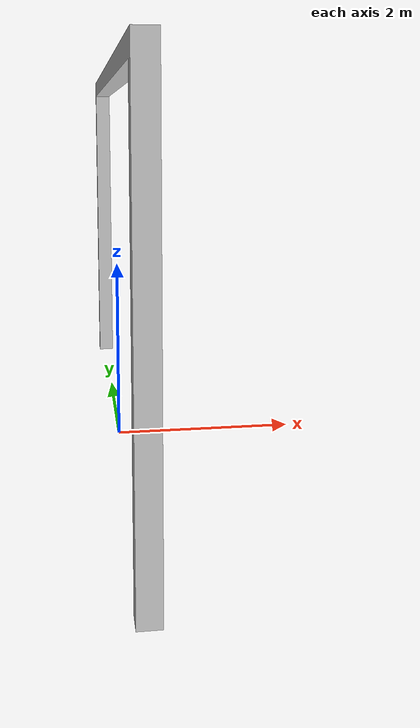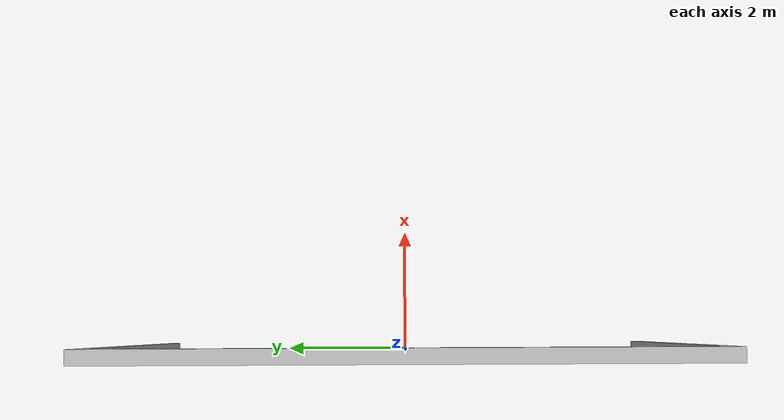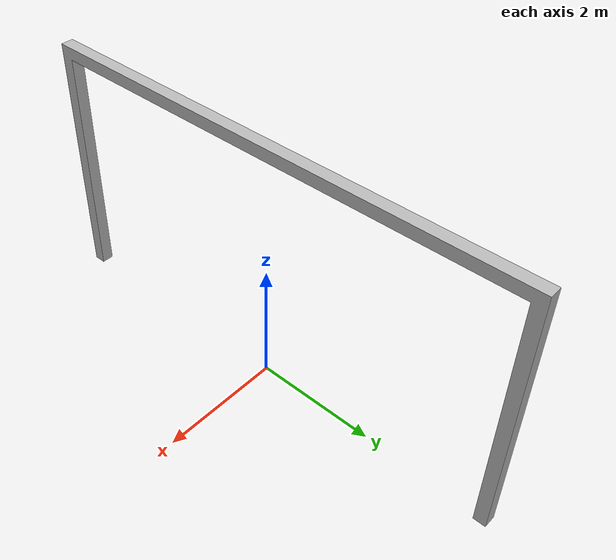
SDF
<?xml version="1.0"?>
<sdf version="1.4">
  <model name="vehicle_gate">
    <static>true</static>
    <pose>0 0 2.0 0 0 0</pose>
    <link name="link">
      <collision name="right_collision">
        <pose>0 -4.0 0 0 0 0</pose>
        <geometry>
          <box>
            <size>0.2 0.2 4.0</size>
          </box>
        </geometry>
      </collision>

      <collision name="left_collision">
        <pose>0 4.0 0 0 0 0</pose>
        <geometry>
          <box>
            <size>0.2 0.2 4.0</size>
          </box>
        </geometry>
      </collision>

      <collision name="top_collision">
        <pose>0 0 2.1 0 0 0</pose>
        <geometry>
          <box>
            <size>0.2 8.2 0.2</size>
          </box>
        </geometry>
      </collision>

      <visual name="visual">
        <pose>0 0 -2.0 0 0 0</pose>
        <geometry>
          <mesh>
            <uri>model://vehicle_gate/meshes/vehicle_gate.dae</uri>
          </mesh>
        </geometry>
        <material>
          <script>
            <uri>model://gate/materials/scripts/gate.material</uri>
            <uri>model://gate/materials/textures</uri>
            <name>vrc/gate</name>
          </script>
        </material>
      </visual>

    </link>
  </model>
</sdf>
